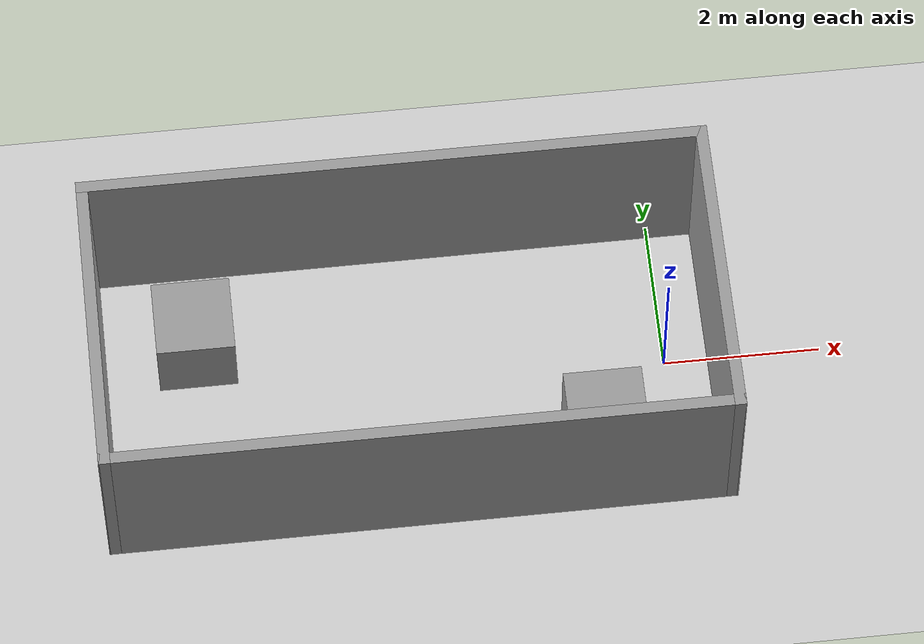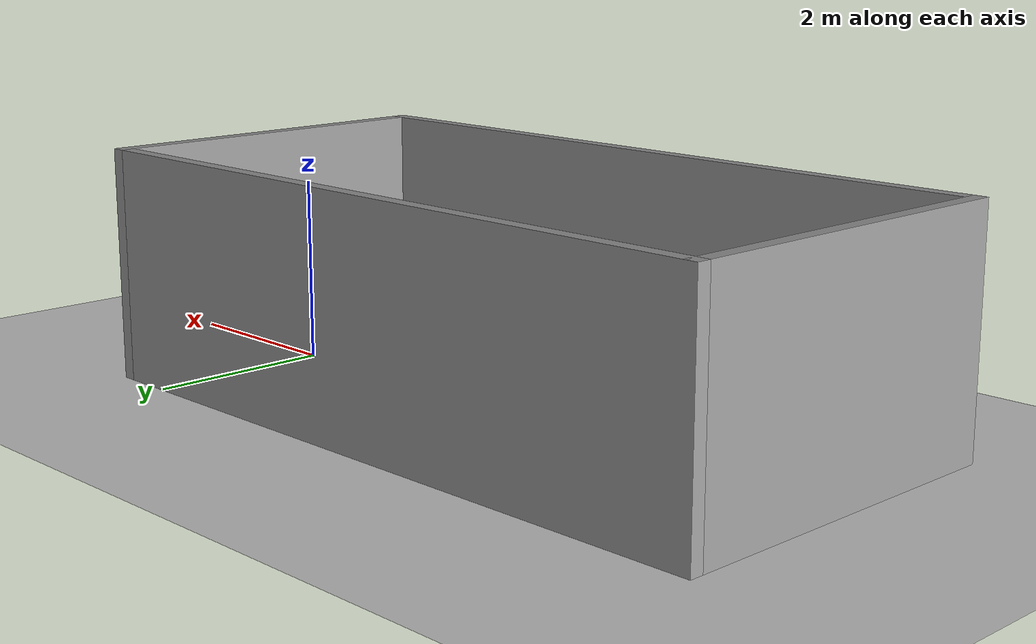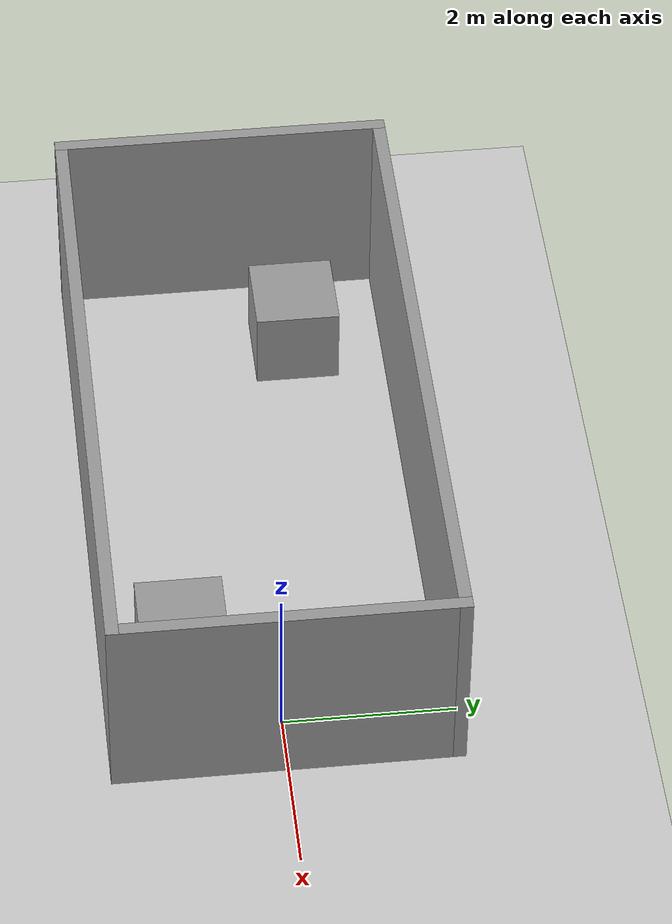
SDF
<sdf version="1.7">
 <world name="default">
  <light name="sun" type="directional">
   <pose>0 0 10 0 -0 0</pose>
   <diffuse>0.8 0.8 0.8 1</diffuse>
   <specular>0.2 0.2 0.2 1</specular>
   <attenuation>
    <range>1000</range>
    <constant>0.9</constant>
    <linear>0.01</linear>
    <quadratic>0.001</quadratic>
   </attenuation>
   <direction>-0.5 0.1 -0.9</direction>
   <spot><inner_angle>0</inner_angle><outer_angle>0</outer_angle><falloff>0</falloff></spot>
  </light>
  <model name="ground_plane">
   <static>1</static>
   <link name="link">
    <collision name="collision">
     <geometry><plane><normal>0 0 1</normal><size>100 100</size></plane></geometry>
     <surface>
      <contact><collide_bitmask>65535</collide_bitmask></contact>
      <friction><ode><mu>100</mu><mu2>50</mu2></ode></friction>
     </surface>
    </collision>
    <visual name="visual">
     <cast_shadows>0</cast_shadows>
     <geometry><plane><normal>0 0 1</normal><size>100 100</size></plane></geometry>
     <material>
      <script><uri>file://media/materials/scripts/gazebo.material</uri><name>Gazebo/Grey</name></script>
     </material>
    </visual>
   </link>
  </model>
  <gravity>0 0 -9.8</gravity>
  <magnetic_field>6e-06 2.3e-05 -4.2e-05</magnetic_field>
  <atmosphere type="adiabatic"/>
  <physics type="ode">
   <max_step_size>0.001</max_step_size>
   <real_time_factor>1</real_time_factor>
   <real_time_update_rate>1000</real_time_update_rate>
  </physics>
  <scene><ambient>0.4 0.4 0.4 1</ambient><background>0.7 0.7 0.7 1</background><shadows>1</shadows></scene>
  <spherical_coordinates>
   <surface_model>EARTH_WGS84</surface_model>
   <latitude_deg>0</latitude_deg>
   <longitude_deg>0</longitude_deg>
   <elevation>0</elevation>
   <heading_deg>0</heading_deg>
  </spherical_coordinates>
  <model name="empty">
   <pose>-3.29738 0.014374 0 0 -0 0</pose>
   <link name="Wall_10">
    <collision name="Wall_10_Collision">
     <geometry><box><size>8 0.15 2.5</size></box></geometry>
     <pose>0 0 1.25 0 -0 0</pose>
    </collision>
    <visual name="Wall_10_Visual">
     <pose>0 0 1.25 0 -0 0</pose>
     <geometry><box><size>8 0.15 2.5</size></box></geometry>
     <material>
      <script><uri>file://media/materials/scripts/gazebo.material</uri><name>Gazebo/Grey</name></script>
      <ambient>1 1 1 1</ambient>
     </material>
     <meta><layer>0</layer></meta>
    </visual>
    <pose>-0 -1.925 0 0 -0 0</pose>
   </link>
   <link name="Wall_13">
    <collision name="Wall_13_Collision">
     <geometry><box><size>4 0.15 2.5</size></box></geometry>
     <pose>0 0 1.25 0 -0 0</pose>
    </collision>
    <visual name="Wall_13_Visual">
     <pose>0 0 1.25 0 -0 0</pose>
     <geometry><box><size>4 0.15 2.5</size></box></geometry>
     <material>
      <script><uri>file://media/materials/scripts/gazebo.material</uri><name>Gazebo/Grey</name></script>
      <ambient>1 1 1 1</ambient>
     </material>
     <meta><layer>0</layer></meta>
    </visual>
    <pose>3.925 -0 0 0 -0 1.5708</pose>
   </link>
   <link name="Wall_14">
    <collision name="Wall_14_Collision">
     <geometry><box><size>8 0.15 2.5</size></box></geometry>
     <pose>0 0 1.25 0 -0 0</pose>
    </collision>
    <visual name="Wall_14_Visual">
     <pose>0 0 1.25 0 -0 0</pose>
     <geometry><box><size>8 0.15 2.5</size></box></geometry>
     <material>
      <script><uri>file://media/materials/scripts/gazebo.material</uri><name>Gazebo/Grey</name></script>
      <ambient>1 1 1 1</ambient>
     </material>
     <meta><layer>0</layer></meta>
    </visual>
    <pose>-0 1.925 0 0 -0 3.14159</pose>
   </link>
   <link name="Wall_15">
    <collision name="Wall_15_Collision">
     <geometry><box><size>4 0.15 2.5</size></box></geometry>
     <pose>0 0 1.25 0 -0 0</pose>
    </collision>
    <visual name="Wall_15_Visual">
     <pose>0 0 1.25 0 -0 0</pose>
     <geometry><box><size>4 0.15 2.5</size></box></geometry>
     <material>
      <script><uri>file://media/materials/scripts/gazebo.material</uri><name>Gazebo/Grey</name></script>
      <ambient>1 1 1 1</ambient>
     </material>
     <meta><layer>0</layer></meta>
    </visual>
    <pose>-3.925 -0 0 0 -0 -1.5708</pose>
   </link>
   <static>1</static>
  </model>
  <model name="unit_box">
   <pose>-5.97969 0.782749 0.499995 -1e-05 -0 0</pose>
   <link name="link">
    <inertial>
     <mass>1</mass>
     <inertia>
      <ixx>0.166667</ixx>
      <ixy>0</ixy>
      <ixz>0</ixz>
      <iyy>0.166667</iyy>
      <iyz>0</iyz>
      <izz>0.166667</izz>
     </inertia>
    </inertial>
    <collision name="collision"><geometry><box><size>1 1 1</size></box></geometry></collision>
    <visual name="visual">
     <geometry><box><size>1 1 1</size></box></geometry>
     <material>
      <script><name>Gazebo/Grey</name><uri>file://media/materials/scripts/gazebo.material</uri></script>
     </material>
    </visual>
   </link>
  </model>
  <model name="unit_box_0">
   <pose>-0.891823 -1.04016 0.5 0 -0 0</pose>
   <link name="link">
    <inertial>
     <mass>1</mass>
     <inertia>
      <ixx>0.166667</ixx>
      <ixy>0</ixy>
      <ixz>0</ixz>
      <iyy>0.166667</iyy>
      <iyz>0</iyz>
      <izz>0.166667</izz>
     </inertia>
    </inertial>
    <collision name="collision"><geometry><box><size>1 1 1</size></box></geometry></collision>
    <visual name="visual">
     <geometry><box><size>1 1 1</size></box></geometry>
     <material>
      <script><name>Gazebo/Grey</name><uri>file://media/materials/scripts/gazebo.material</uri></script>
     </material>
    </visual>
   </link>
  </model>
 </world>
</sdf>
